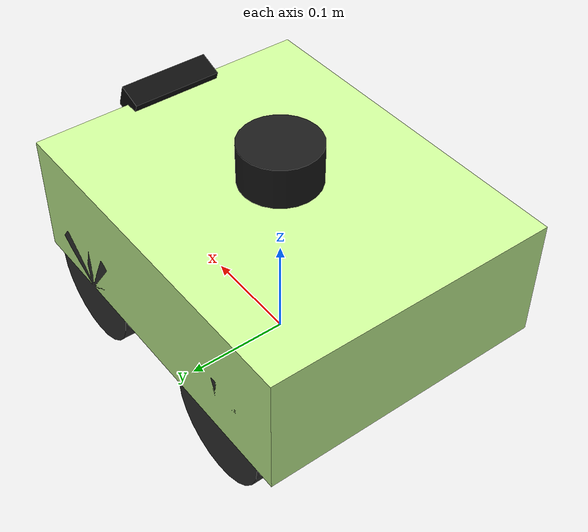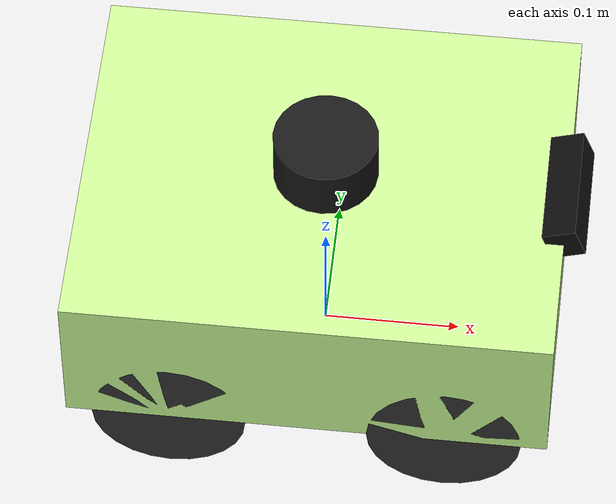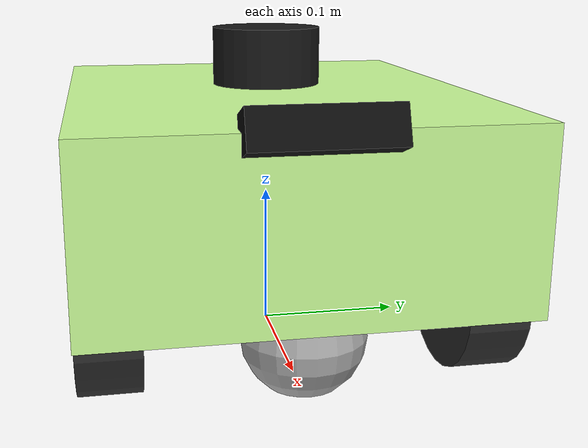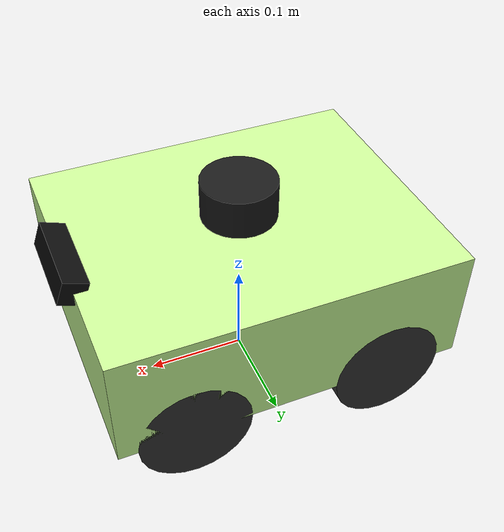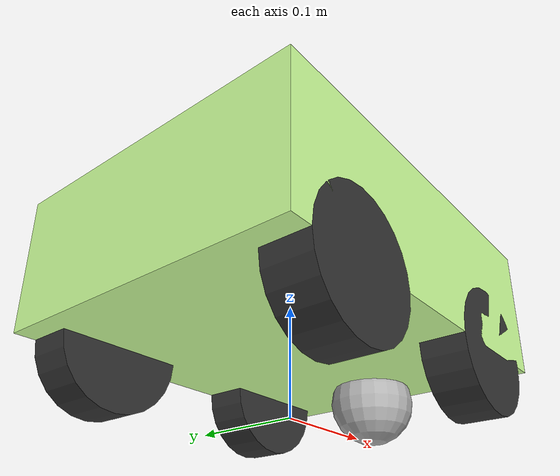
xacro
<?xml version="1.0"?>
<robot name="aiear" xmlns:xacro="http://www.ros.org/wiki/xacro">

  <!-- ================================================================
       PROPERTIES
       ================================================================ -->

  <!-- Chassis -->
  <xacro:property name="chassis_length" value="0.35" />
  <xacro:property name="chassis_width" value="0.28" />
  <xacro:property name="chassis_height" value="0.12" />
  <xacro:property name="chassis_mass" value="3.0" />

  <!-- Wheels (JGB37-520B) -->
  <xacro:property name="wheel_radius" value="0.056" />
  <xacro:property name="wheel_width" value="0.04" />
  <xacro:property name="wheel_mass" value="0.3" />
  <!-- Left-right wheelbase: 240 mm → y offset = ±120 mm -->
  <xacro:property name="wheelbase" value="0.24" />
  <xacro:property name="wheel_y" value="${wheelbase/2.0}" />
  <!-- Front/rear longitudinal position -->
  <xacro:property name="wheel_front_x" value="0.10" />
  <xacro:property name="wheel_rear_x" value="-0.10" />
  <!-- Wheel joint z relative to base_link (axle at chassis bottom) -->
  <xacro:property name="wheel_z" value="${-chassis_height/2}" />

  <!-- Caster (passive ball caster, ø50 mm) -->
  <xacro:property name="caster_radius" value="0.040" />
  <xacro:property name="caster_mass" value="0.05" />
  <xacro:property name="caster_x" value="0.13" />
  <xacro:property name="caster_z" value="${-(chassis_height/2 + wheel_radius - caster_radius)}" />

  <!-- RPLiDAR A1 — total height from ground = 200 mm -->
  <xacro:property name="lidar_radius" value="0.038" />
  <xacro:property name="lidar_height" value="0.040" />
  <xacro:property name="lidar_mass" value="0.17" />
  <!-- lidar_z from base_link: 0.200 − (wheel_radius + chassis_height/2) = 0.084 m -->
  <xacro:property name="lidar_z" value="${0.200 - wheel_radius - chassis_height/2}" />

  <!-- Riser post connecting chassis top to LiDAR bottom -->
  <xacro:property name="riser_radius" value="0.008" />
  <xacro:property name="riser_height" value="${lidar_z - chassis_height/2 - lidar_height/2}" />

  <!-- IMX500 Camera — front-top edge, tilted 20 ° downward -->
  <xacro:property name="cam_mass" value="0.05" />
  <xacro:property name="cam_x" value="${chassis_length/2}" />
  <xacro:property name="cam_z" value="${chassis_height/2}" />
  <xacro:property name="cam_pitch" value="${-20.0 * pi / 180.0}" />
  <!-- 60° horizontal FOV → 1.0472 rad -->
  <xacro:property name="cam_fov" value="1.0472" />

  <xacro:include filename="$(find aiear_robot)/urdf/robot_sensor_physics.gazebo" />
  <xacro:include filename="$(find aiear_robot)/urdf/ros2_control.xacro" />

  <!-- ================================================================
       INERTIA MACROS
       ================================================================ -->

  <!-- Solid box: principal axes aligned with link frame -->
  <xacro:macro name="box_inertia" params="m x y z">
    <inertia ixx="${m*(y*y+z*z)/12}" ixy="0.0" ixz="0.0"
      iyy="${m*(x*x+z*z)/12}" iyz="0.0"
      izz="${m*(x*x+y*y)/12}" />
  </xacro:macro>

  <!-- Cylinder spinning about Y axis (wheel orientation after rpy=pi/2 0 0) -->
  <xacro:macro name="wheel_inertia" params="m r h">
    <inertia ixx="${m*(3*r*r+h*h)/12}" ixy="0.0" ixz="0.0"
      iyy="${m*r*r/2}" iyz="0.0"
      izz="${m*(3*r*r+h*h)/12}" />
  </xacro:macro>

  <!-- Cylinder spinning about Z axis (lidar, riser) -->
  <xacro:macro name="cylinder_inertia_z" params="m r h">
    <inertia ixx="${m*(3*r*r+h*h)/12}" ixy="0.0" ixz="0.0"
      iyy="${m*(3*r*r+h*h)/12}" iyz="0.0"
      izz="${m*r*r/2}" />
  </xacro:macro>

  <!-- Sphere -->
  <xacro:macro name="sphere_inertia" params="m r">
    <inertia ixx="${2*m*r*r/5}" ixy="0.0" ixz="0.0"
      iyy="${2*m*r*r/5}" iyz="0.0"
      izz="${2*m*r*r/5}" />
  </xacro:macro>

  <!-- ================================================================
       WHEEL MACRO
       ================================================================ -->
  <xacro:macro name="wheel" params="name x y">
    <link name="${name}_wheel_link">
      <visual>
        <!-- Rotate cylinder from Z-axis to Y-axis for correct wheel orientation -->
        <origin xyz="0 0 0" rpy="${pi/2} 0 0" />
        <geometry>
          <cylinder radius="${wheel_radius}" length="${wheel_width}" />
        </geometry>
        <material name="dark_grey">
          <color rgba="0.2 0.2 0.2 1.0" />
        </material>
      </visual>
      <collision>
        <origin xyz="0 0 0" rpy="${pi/2} 0 0" />
        <geometry>
          <cylinder radius="${wheel_radius}" length="${wheel_width}" />
        </geometry>
      </collision>
      <inertial>
        <mass value="${wheel_mass}" />
        <origin xyz="0 0 0" rpy="0 0 0" />
        <xacro:wheel_inertia m="${wheel_mass}" r="${wheel_radius}" h="${wheel_width}" />
      </inertial>
    </link>

    <joint name="${name}_wheel_joint" type="continuous">
      <parent link="base_link" />
      <child link="${name}_wheel_link" />
      <origin xyz="${x} ${y} ${wheel_z}" rpy="0 0 0" />
      <axis xyz="0 1 0" />
      <dynamics damping="0.05" friction="0.05" />
    </joint>

    <!-- Gazebo wheel surface properties -->
    <gazebo reference="${name}_wheel_link">
      <material>Gazebo/DarkGrey</material>
      <surface>
        <friction>
          <ode>
            <mu>0.8</mu>
            <mu2>0.8</mu2>
          </ode>
        </friction>
      </surface>
    </gazebo>
  </xacro:macro>

  <!-- ================================================================
       LINKS
       ================================================================ -->

  <!-- base_footprint: ground-projected reference link (REP-105) -->
  <link name="base_footprint" />

  <joint name="base_footprint_joint" type="fixed">
    <parent link="base_footprint" />
    <child link="base_link" />
    <origin xyz="0 0 ${wheel_radius + chassis_height/2}" rpy="0 0 0" />
  </joint>

  <!-- ── Chassis (base_link) ─────────────────────────────────────── -->
  <link name="base_link">
    <visual>
      <origin xyz="0 0 0" rpy="0 0 0" />
      <geometry>
        <box size="${chassis_length} ${chassis_width} ${chassis_height}" />
      </geometry>
      <material name="aiear_blue">
        <color rgba="0.80 1.0 0.60 1.0" />
      </material>
    </visual>
    <collision>
      <origin xyz="0 0 0" rpy="0 0 0" />
      <geometry>
        <box size="${chassis_length} ${chassis_width} ${chassis_height}" />
      </geometry>
    </collision>
    <inertial>
      <origin xyz="0 0 0" rpy="0 0 0" />
      <mass value="${chassis_mass}" />
      <xacro:box_inertia
        m="${chassis_mass}"
        x="${chassis_length}"
        y="${chassis_width}"
        z="${chassis_height}" />
    </inertial>
  </link>

  <gazebo reference="base_link">
    <material>Gazebo/Blue</material>
  </gazebo>

  <!-- ── Four Drive Wheels ─────────────────────────────────────── -->
  <xacro:wheel name="front_left" x="${wheel_front_x}" y="${wheel_y}" />
  <xacro:wheel name="front_right" x="${wheel_front_x}" y="${-wheel_y}" />
  <xacro:wheel name="rear_left" x="${wheel_rear_x}" y="${wheel_y}" />
  <xacro:wheel name="rear_right" x="${wheel_rear_x}" y="${-wheel_y}" />

  <!-- ── Passive Caster Wheel (front underside) ────────────────── -->
  <link name="caster_wheel_link">
    <visual>
      <origin xyz="0 0 0" rpy="0 0 0" />
      <geometry>
        <sphere radius="${caster_radius}" />
      </geometry>
      <material name="light_grey">
        <color rgba="0.70 0.70 0.70 1.0" />
      </material>
    </visual>
    <collision>
      <origin xyz="0 0 0" rpy="0 0 0" />
      <geometry>
        <sphere radius="${caster_radius}" />
      </geometry>
    </collision>
    <inertial>
      <mass value="${caster_mass}" />
      <origin xyz="0 0 0" rpy="0 0 0" />
      <xacro:sphere_inertia m="${caster_mass}" r="${caster_radius}" />
    </inertial>
  </link>

  <joint name="caster_wheel_joint" type="fixed">
    <parent link="base_link" />
    <child link="caster_wheel_link" />
    <origin xyz="${caster_x} 0 ${caster_z}" rpy="0 0 0" />
  </joint>

  <!-- Zero friction so the caster slides freely -->
  <gazebo reference="caster_wheel_link">
    <material>Gazebo/Grey</material>
    <surface>
      <friction>
        <ode>
          <mu1>0.0</mu1>
          <mu2>0.0</mu2>
        </ode>
      </friction>
    </surface>
  </gazebo>

  <!-- ── LiDAR Riser Post ──────────────────────────────────────── -->
  <link name="lidar_riser_link">
    <visual>
      <origin xyz="0 0 0" rpy="0 0 0" />
      <geometry>
        <cylinder radius="${riser_radius}" length="${riser_height}" />
      </geometry>
      <material name="aluminium">
        <color rgba="0.75 0.75 0.75 1.0" />
      </material>
    </visual>
    <collision>
      <origin xyz="0 0 0" rpy="0 0 0" />
      <geometry>
        <cylinder radius="${riser_radius}" length="${riser_height}" />
      </geometry>
    </collision>
    <inertial>
      <mass value="0.05" />
      <origin xyz="0 0 0" rpy="0 0 0" />
      <xacro:cylinder_inertia_z m="0.05" r="${riser_radius}" h="${riser_height}" />
    </inertial>
  </link>

  <!-- Riser base sits at chassis top; riser joint at chassis-top level -->
  <joint name="lidar_riser_joint" type="fixed">
    <parent link="base_link" />
    <child link="lidar_riser_link" />
    <!-- Centre the riser between chassis top and lidar bottom -->
    <origin xyz="0 0 ${chassis_height/2 + riser_height/2}" rpy="0 0 0" />
  </joint>

  <!-- ── RPLiDAR A1 Sensor Link ─────────────────────────────────── -->
  <!--
    Total height from ground = 200 mm
    lidar_z from base_link  = 0.200 − 0.116 = 0.084 m
  -->
  <link name="lidar_link">
    <visual>
      <origin xyz="0 0 0" rpy="0 0 0" />
      <geometry>
        <cylinder radius="${lidar_radius}" length="${lidar_height}" />
      </geometry>
      <material name="lidar_black">
        <color rgba="0.10 0.10 0.10 1.0" />
      </material>
    </visual>
    <collision>
      <origin xyz="0 0 0" rpy="0 0 0" />
      <geometry>
        <cylinder radius="${lidar_radius}" length="${lidar_height}" />
      </geometry>
    </collision>
    <inertial>
      <mass value="${lidar_mass}" />
      <origin xyz="0 0 0" rpy="0 0 0" />
      <xacro:cylinder_inertia_z m="${lidar_mass}"
        r="${lidar_radius}"
        h="${lidar_height}" />
    </inertial>
  </link>

  <joint name="lidar_joint" type="fixed">
    <parent link="base_link" />
    <child link="lidar_link" />
    <origin xyz="0 0 ${lidar_z}" rpy="0 0 0" />
  </joint>

  <!-- ── IMX500 Camera Link ─────────────────────────────────────── -->
  <link name="camera_link">
    <visual>
      <!-- Small rectangular module: 25 mm × 90 mm × 25 mm -->
      <origin xyz="0 0 0" rpy="0 0 0" />
      <geometry>
        <box size="0.025 0.090 0.025" />
      </geometry>
      <material name="cam_black">
        <color rgba="0.05 0.05 0.05 1.0" />
      </material>
    </visual>
    <collision>
      <origin xyz="0 0 0" rpy="0 0 0" />
      <geometry>
        <box size="0.025 0.090 0.025" />
      </geometry>
    </collision>
    <inertial>
      <mass value="${cam_mass}" />
      <origin xyz="0 0 0" rpy="0 0 0" />
      <xacro:box_inertia m="${cam_mass}" x="0.025" y="0.090" z="0.025" />
    </inertial>
  </link>

  <!-- Camera optical frame (Z forward in camera convention) -->
  <link name="camera_optical_link" />

  <joint name="camera_joint" type="fixed">
    <parent link="base_link" />
    <child link="camera_link" />
    <!-- Front-top edge; pitch down 20° -->
    <origin xyz="${cam_x} 0 ${cam_z}" rpy="0 ${cam_pitch} 0" />
  </joint>

  <joint name="camera_optical_joint" type="fixed">
    <parent link="camera_link" />
    <child link="camera_optical_link" />
    <!-- ROS camera convention: rotate so Z points forward, Y points down -->
    <origin xyz="0 0 0" rpy="${-pi/2} 0 ${-pi/2}" />
  </joint>

</robot>
